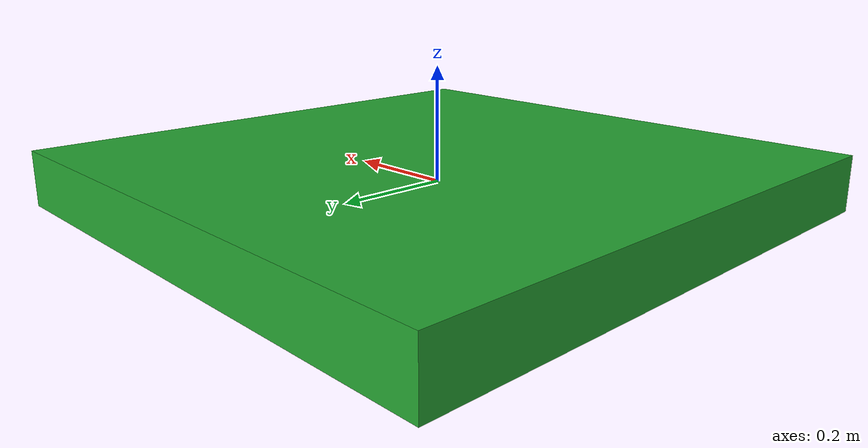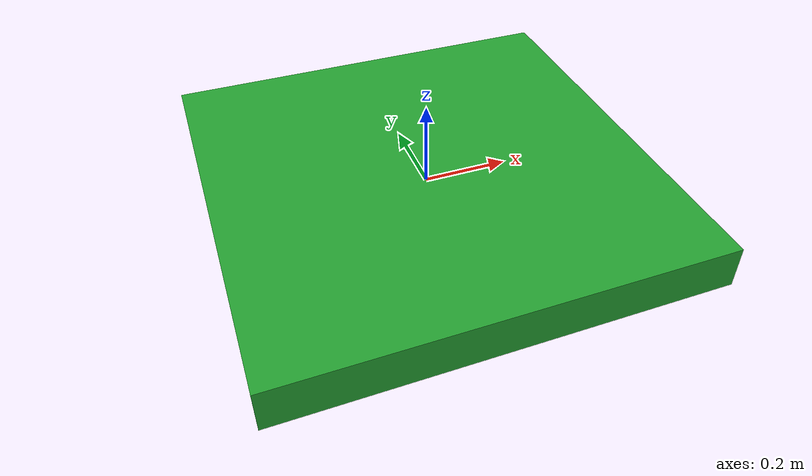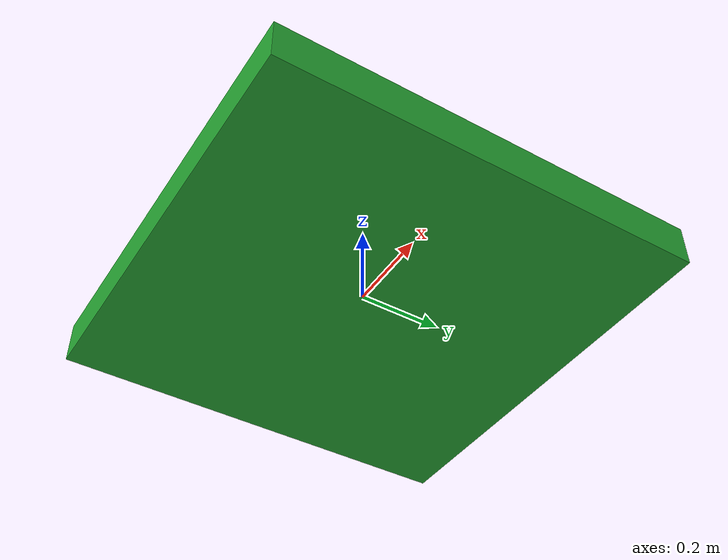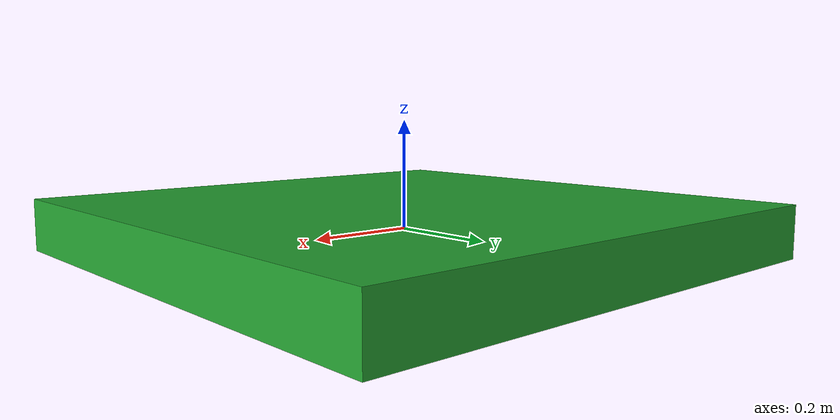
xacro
<?xml version="1.0"?>
<robot xmlns:xacro="http://www.ros.org/wiki/xacro" name="dummy">

    <xacro:include filename="inertial_macros.xacro"/>

    <!-- First link: buoyon -->
    <link name="buoyon">
        <visual>
            <geometry>
                <box size="1 1 0.1"/>
            </geometry>
            <origin rpy="0 0 0" xyz="0 0 0"/>
        </visual>
        <collision>
            <geometry>
                <box size="1 1 0.1"/>
            </geometry>
            <origin rpy="0 0 0" xyz="0 0 0"/>
        </collision>
        <xacro:inertial_box mass="10.5" x="1.0" y="1.0" z="0.1">
            <origin xyz="0.5 0.05 5" rpy="0 0 0"/>
        </xacro:inertial_box>

    </link>

    <!-- Second link: buoyon2 -->

    <!-- Prismatic joint connecting buoyon to buoyon2 -->

    <!-- Gazebo properties for buoyon -->
    <gazebo reference="buoyon">
        <mu1>0.2</mu1>
        <mu2>0.2</mu2>
        <material>Gazebo/Green</material>
    </gazebo>

    <!-- Gazebo properties for buoyon2 -->

    <!-- Buoyancy plugin for hydrodynamic response -->
    <plugin name="BuoyancyPlugin" filename="libBuoyancyPlugin.so">
        <fluid_density>999.1026</fluid_density>

        <!-- Buoyancy properties for buoyon -->
        <link name="buoyon">
            <volume>50.0</volume>
        </link>

        <!-- Buoyancy properties for buoyon2 -->

    </plugin>

</robot>

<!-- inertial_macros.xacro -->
<robot xmlns:xacro="http://www.ros.org/wiki/xacro" >

    <!-- Specify some standard inertial calculations https://en.wikipedia.org/wiki/List_of_moments_of_inertia -->
    <!-- These make use of xacro's mathematical functionality -->

    <xacro:macro name="inertial_sphere" params="mass radius *origin">
        <inertial>
            <xacro:insert_block name="origin"/>
            <mass value="${mass}" />
            <inertia ixx="${(2/5) * mass * (radius*radius)}" ixy="0.0" ixz="0.0"
                    iyy="${(2/5) * mass * (radius*radius)}" iyz="0.0"
                    izz="${(2/5) * mass * (radius*radius)}" />
        </inertial>
    </xacro:macro>

    <xacro:macro name="inertial_box" params="mass x y z *origin">
        <inertial>
            <xacro:insert_block name="origin"/>
            <mass value="${mass}" />
            <inertia ixx="${(1/12) * mass * (y*y+z*z)}" ixy="0.0" ixz="0.0"
                    iyy="${(1/12) * mass * (x*x+z*z)}" iyz="0.0"
                    izz="${(1/12) * mass * (x*x+y*y)}" />
        </inertial>
    </xacro:macro>

    <xacro:macro name="inertial_cylinder" params="mass length radius *origin">

        <inertial>
            <xacro:insert_block name="origin"/>
            <mass value="${mass}" />
            <inertia ixx="${(1/12) * mass * (3*radius*radius + length*length)}" ixy="0.0" ixz="0.0"
                    iyy="${(1/12) * mass * (3*radius*radius + length*length)}" iyz="0.0"
                    izz="${(1/2) * mass * (radius*radius)}" />
        </inertial>
    </xacro:macro>

</robot>
